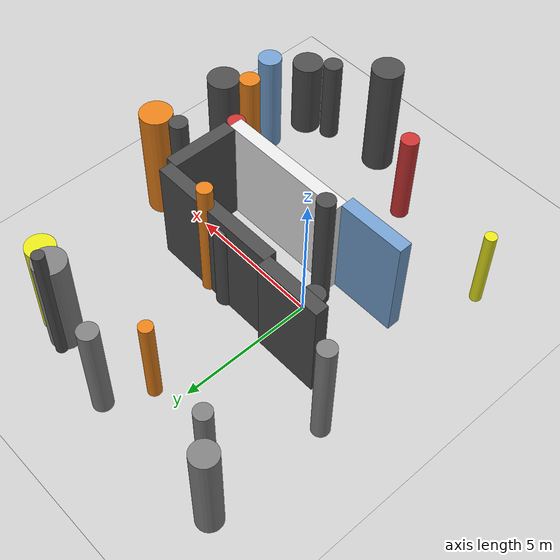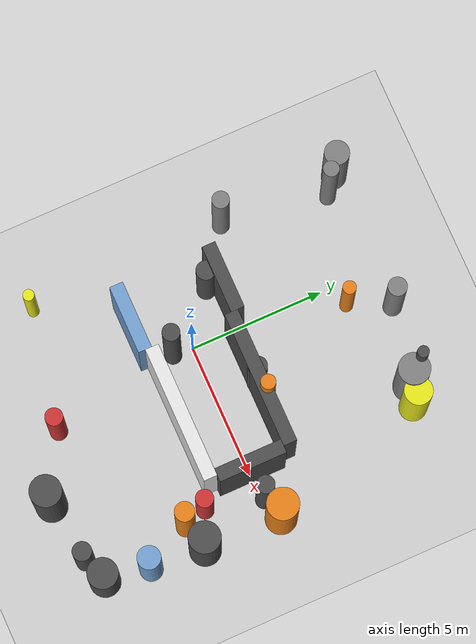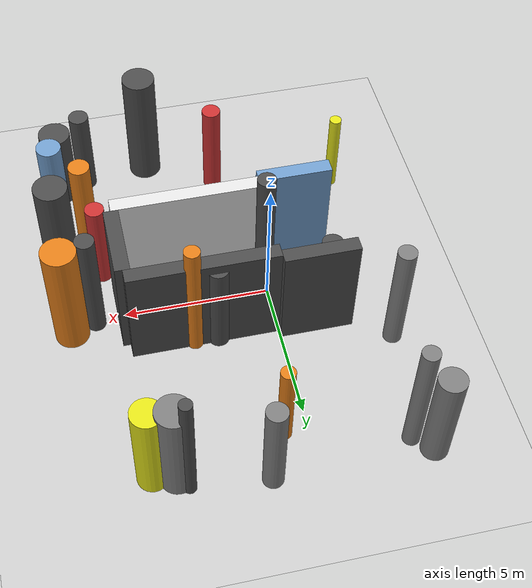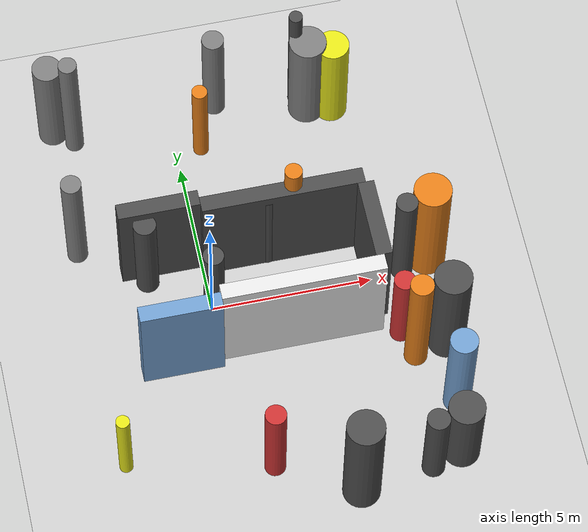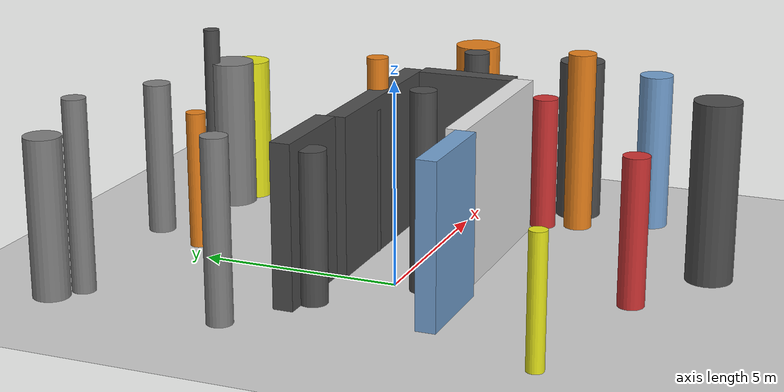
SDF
<?xml version='1.0'?>
<sdf version='1.6'>
  <world name='routeA_rl_v1__dense_recovery__rl_val__cul_de_sac_trap__000038'>
    <!-- Sun light -->
    <light name='sun' type='directional'>
      <cast_shadows>1</cast_shadows>
      <pose>0 0 10 0 0 0</pose>
      <diffuse>0.8 0.8 0.8 1</diffuse>
      <specular>0.2 0.2 0.2 1</specular>
      <attenuation>
        <range>1000</range>
        <constant>0.9</constant>
        <linear>0.01</linear>
        <quadratic>0.001</quadratic>
      </attenuation>
      <direction>-0.5 0.1 -0.9</direction>
    </light>

    <!-- Ground plane -->
    <model name='ground_plane'>
      <static>1</static>
      <link name='link'>
        <collision name='collision'>
          <geometry>
            <plane>
              <normal>0 0 1</normal>
              <size>100 100</size>
            </plane>
          </geometry>
          <surface>
            <contact>
              <collide_bitmask>65535</collide_bitmask>
              <ode/>
            </contact>
            <friction>
              <ode>
                <mu>100</mu>
                <mu2>50</mu2>
              </ode>
              <torsional><ode/></torsional>
            </friction>
            <bounce/>
          </surface>
          <max_contacts>10</max_contacts>
        </collision>
        <visual name='visual'>
          <cast_shadows>0</cast_shadows>
          <geometry>
            <plane>
              <normal>0 0 1</normal>
              <size>100 100</size>
            </plane>
          </geometry>
          <material>
            <script>
              <uri>file://media/materials/scripts/gazebo.material</uri>
              <n>Gazebo/Grey</n>
            </script>
          </material>
        </visual>
      </link>
    </model>

    <!-- Environment -->
    <magnetic_field>6e-06 2.3e-05 -4.2e-05</magnetic_field>
    <atmosphere type='adiabatic'/>
    <physics name='default_physics' default='0' type='ode'>
      <gravity>0 0 -9.8</gravity>
      <max_step_size>0.004</max_step_size>
      <real_time_factor>1</real_time_factor>
      <real_time_update_rate>250</real_time_update_rate>
    </physics>
    <scene>
      <ambient>0.4 0.4 0.4 1</ambient>
      <background>0.7 0.7 0.7 1</background>
      <shadows>1</shadows>
    </scene>
    <wind/>
    <spherical_coordinates>
      <surface_model>EARTH_WGS84</surface_model>
      <latitude_deg>0</latitude_deg>
      <longitude_deg>0</longitude_deg>
      <elevation>0</elevation>
      <heading_deg>0</heading_deg>
    </spherical_coordinates>

    <!-- ============ OBSTACLES (28) ============ -->
    <model name='trap_side_l'>
      <static>1</static>
      <link name='link'>
        <visual name='visual'>
          <geometry>
            <box>
              <size>5.0000 0.5000 4.0000</size>
            </box>
          </geometry>
          <material>
            <script>
              <n>Gazebo/White</n>
              <uri>file://media/materials/scripts/gazebo.material</uri>
            </script>
            <ambient>0.9 0.9 0.9 1</ambient>
          </material>
        </visual>
        <collision name='collision'>
          <geometry>
            <box>
              <size>5.0000 0.5000 4.0000</size>
            </box>
          </geometry>
          <max_contacts>10</max_contacts>
          <surface>
            <contact><ode/></contact>
            <bounce/>
            <friction>
              <ode><mu>1</mu><mu2>1</mu2></ode>
              <torsional><ode/></torsional>
            </friction>
          </surface>
        </collision>
      </link>
      <pose>2.5000 -1.5000 2.0000 0 0 0.0000</pose>
    </model>

    <model name='trap_side_r'>
      <static>1</static>
      <link name='link'>
        <visual name='visual'>
          <geometry>
            <box>
              <size>5.0000 0.5000 4.0000</size>
            </box>
          </geometry>
          <material>
            <script>
              <n>Gazebo/DarkGrey</n>
              <uri>file://media/materials/scripts/gazebo.material</uri>
            </script>
            <ambient>0.3 0.3 0.3 1</ambient>
          </material>
        </visual>
        <collision name='collision'>
          <geometry>
            <box>
              <size>5.0000 0.5000 4.0000</size>
            </box>
          </geometry>
          <max_contacts>10</max_contacts>
          <surface>
            <contact><ode/></contact>
            <bounce/>
            <friction>
              <ode><mu>1</mu><mu2>1</mu2></ode>
              <torsional><ode/></torsional>
            </friction>
          </surface>
        </collision>
      </link>
      <pose>2.5000 1.5000 2.0000 0 0 0.0000</pose>
    </model>

    <model name='trap_back'>
      <static>1</static>
      <link name='link'>
        <visual name='visual'>
          <geometry>
            <box>
              <size>0.5000 2.5000 4.0000</size>
            </box>
          </geometry>
          <material>
            <script>
              <n>Gazebo/DarkGrey</n>
              <uri>file://media/materials/scripts/gazebo.material</uri>
            </script>
            <ambient>0.3 0.3 0.3 1</ambient>
          </material>
        </visual>
        <collision name='collision'>
          <geometry>
            <box>
              <size>0.5000 2.5000 4.0000</size>
            </box>
          </geometry>
          <max_contacts>10</max_contacts>
          <surface>
            <contact><ode/></contact>
            <bounce/>
            <friction>
              <ode><mu>1</mu><mu2>1</mu2></ode>
              <torsional><ode/></torsional>
            </friction>
          </surface>
        </collision>
      </link>
      <pose>5.0000 0.0000 2.0000 0 0 0.0000</pose>
    </model>

    <model name='trap_funnel_l'>
      <static>1</static>
      <link name='link'>
        <visual name='visual'>
          <geometry>
            <box>
              <size>2.5000 0.5000 4.0000</size>
            </box>
          </geometry>
          <material>
            <script>
              <n>Gazebo/Blue</n>
              <uri>file://media/materials/scripts/gazebo.material</uri>
            </script>
            <ambient>0.447 0.624 0.812 1</ambient>
          </material>
        </visual>
        <collision name='collision'>
          <geometry>
            <box>
              <size>2.5000 0.5000 4.0000</size>
            </box>
          </geometry>
          <max_contacts>10</max_contacts>
          <surface>
            <contact><ode/></contact>
            <bounce/>
            <friction>
              <ode><mu>1</mu><mu2>1</mu2></ode>
              <torsional><ode/></torsional>
            </friction>
          </surface>
        </collision>
      </link>
      <pose>-1.2500 -1.7500 2.0000 0 0 0.0000</pose>
    </model>

    <model name='trap_funnel_r'>
      <static>1</static>
      <link name='link'>
        <visual name='visual'>
          <geometry>
            <box>
              <size>2.5000 0.5000 4.0000</size>
            </box>
          </geometry>
          <material>
            <script>
              <n>Gazebo/DarkGrey</n>
              <uri>file://media/materials/scripts/gazebo.material</uri>
            </script>
            <ambient>0.3 0.3 0.3 1</ambient>
          </material>
        </visual>
        <collision name='collision'>
          <geometry>
            <box>
              <size>2.5000 0.5000 4.0000</size>
            </box>
          </geometry>
          <max_contacts>10</max_contacts>
          <surface>
            <contact><ode/></contact>
            <bounce/>
            <friction>
              <ode><mu>1</mu><mu2>1</mu2></ode>
              <torsional><ode/></torsional>
            </friction>
          </surface>
        </collision>
      </link>
      <pose>-1.2500 1.7500 2.0000 0 0 0.0000</pose>
    </model>

    <model name='trap_scatter_0'>
      <static>1</static>
      <link name='link'>
        <visual name='visual'>
          <geometry>
            <cylinder>
              <radius>0.5761</radius>
              <length>4.4370</length>
            </cylinder>
          </geometry>
          <material>
            <script>
              <n>Gazebo/DarkGrey</n>
              <uri>file://media/materials/scripts/gazebo.material</uri>
            </script>
            <ambient>0.3 0.3 0.3 1</ambient>
          </material>
        </visual>
        <collision name='collision'>
          <geometry>
            <cylinder>
              <radius>0.5761</radius>
              <length>4.4370</length>
            </cylinder>
          </geometry>
          <max_contacts>10</max_contacts>
          <surface>
            <contact><ode/></contact>
            <bounce/>
            <friction>
              <ode><mu>1</mu><mu2>1</mu2></ode>
              <torsional><ode/></torsional>
            </friction>
          </surface>
        </collision>
      </link>
      <pose>3.1615 -6.8495 2.2185 0 0 0.0000</pose>
    </model>

    <model name='trap_scatter_1'>
      <static>1</static>
      <link name='link'>
        <visual name='visual'>
          <geometry>
            <cylinder>
              <radius>0.3586</radius>
              <length>4.6310</length>
            </cylinder>
          </geometry>
          <material>
            <script>
              <n>Gazebo/Orange</n>
              <uri>file://media/materials/scripts/gazebo.material</uri>
            </script>
            <ambient>0.9 0.5 0.1 1</ambient>
          </material>
        </visual>
        <collision name='collision'>
          <geometry>
            <cylinder>
              <radius>0.3586</radius>
              <length>4.6310</length>
            </cylinder>
          </geometry>
          <max_contacts>10</max_contacts>
          <surface>
            <contact><ode/></contact>
            <bounce/>
            <friction>
              <ode><mu>1</mu><mu2>1</mu2></ode>
              <torsional><ode/></torsional>
            </friction>
          </surface>
        </collision>
      </link>
      <pose>5.7633 -2.8080 2.3155 0 0 0.0000</pose>
    </model>

    <model name='trap_scatter_2'>
      <static>1</static>
      <link name='link'>
        <visual name='visual'>
          <geometry>
            <cylinder>
              <radius>0.3279</radius>
              <length>4.3397</length>
            </cylinder>
          </geometry>
          <material>
            <script>
              <n>Gazebo/DarkGrey</n>
              <uri>file://media/materials/scripts/gazebo.material</uri>
            </script>
            <ambient>0.3 0.3 0.3 1</ambient>
          </material>
        </visual>
        <collision name='collision'>
          <geometry>
            <cylinder>
              <radius>0.3279</radius>
              <length>4.3397</length>
            </cylinder>
          </geometry>
          <max_contacts>10</max_contacts>
          <surface>
            <contact><ode/></contact>
            <bounce/>
            <friction>
              <ode><mu>1</mu><mu2>1</mu2></ode>
              <torsional><ode/></torsional>
            </friction>
          </surface>
        </collision>
      </link>
      <pose>6.0041 0.1207 2.1698 0 0 0.0000</pose>
    </model>

    <model name='trap_scatter_3'>
      <static>1</static>
      <link name='link'>
        <visual name='visual'>
          <geometry>
            <cylinder>
              <radius>0.2083</radius>
              <length>3.1571</length>
            </cylinder>
          </geometry>
          <material>
            <script>
              <n>Gazebo/Yellow</n>
              <uri>file://media/materials/scripts/gazebo.material</uri>
            </script>
            <ambient>0.9 0.9 0.1 1</ambient>
          </material>
        </visual>
        <collision name='collision'>
          <geometry>
            <cylinder>
              <radius>0.2083</radius>
              <length>3.1571</length>
            </cylinder>
          </geometry>
          <max_contacts>10</max_contacts>
          <surface>
            <contact><ode/></contact>
            <bounce/>
            <friction>
              <ode><mu>1</mu><mu2>1</mu2></ode>
              <torsional><ode/></torsional>
            </friction>
          </surface>
        </collision>
      </link>
      <pose>-3.5589 -4.6470 1.5785 0 0 0.0000</pose>
    </model>

    <model name='trap_scatter_5'>
      <static>1</static>
      <link name='link'>
        <visual name='visual'>
          <geometry>
            <cylinder>
              <radius>0.3259</radius>
              <length>3.4390</length>
            </cylinder>
          </geometry>
          <material>
            <script>
              <n>Gazebo/Red</n>
              <uri>file://media/materials/scripts/gazebo.material</uri>
            </script>
            <ambient>0.8 0.2 0.2 1</ambient>
          </material>
        </visual>
        <collision name='collision'>
          <geometry>
            <cylinder>
              <radius>0.3259</radius>
              <length>3.4390</length>
            </cylinder>
          </geometry>
          <max_contacts>10</max_contacts>
          <surface>
            <contact><ode/></contact>
            <bounce/>
            <friction>
              <ode><mu>1</mu><mu2>1</mu2></ode>
              <torsional><ode/></torsional>
            </friction>
          </surface>
        </collision>
      </link>
      <pose>5.4886 -1.9475 1.7195 0 0 0.0000</pose>
    </model>

    <model name='trap_scatter_6'>
      <static>1</static>
      <link name='link'>
        <visual name='visual'>
          <geometry>
            <cylinder>
              <radius>0.3236</radius>
              <length>3.6180</length>
            </cylinder>
          </geometry>
          <material>
            <script>
              <n>Gazebo/Red</n>
              <uri>file://media/materials/scripts/gazebo.material</uri>
            </script>
            <ambient>0.8 0.2 0.2 1</ambient>
          </material>
        </visual>
        <collision name='collision'>
          <geometry>
            <cylinder>
              <radius>0.3236</radius>
              <length>3.6180</length>
            </cylinder>
          </geometry>
          <max_contacts>10</max_contacts>
          <surface>
            <contact><ode/></contact>
            <bounce/>
            <friction>
              <ode><mu>1</mu><mu2>1</mu2></ode>
              <torsional><ode/></torsional>
            </friction>
          </surface>
        </collision>
      </link>
      <pose>0.8043 -5.5558 1.8090 0 0 0.0000</pose>
    </model>

    <model name='trap_scatter_7'>
      <static>1</static>
      <link name='link'>
        <visual name='visual'>
          <geometry>
            <cylinder>
              <radius>0.5770</radius>
              <length>3.8896</length>
            </cylinder>
          </geometry>
          <material>
            <script>
              <n>Gazebo/Grey</n>
              <uri>file://media/materials/scripts/gazebo.material</uri>
            </script>
            <ambient>0.5 0.5 0.5 1</ambient>
          </material>
        </visual>
        <collision name='collision'>
          <geometry>
            <cylinder>
              <radius>0.5770</radius>
              <length>3.8896</length>
            </cylinder>
          </geometry>
          <max_contacts>10</max_contacts>
          <surface>
            <contact><ode/></contact>
            <bounce/>
            <friction>
              <ode><mu>1</mu><mu2>1</mu2></ode>
              <torsional><ode/></torsional>
            </friction>
          </surface>
        </collision>
      </link>
      <pose>4.3668 6.4803 1.9448 0 0 0.0000</pose>
    </model>

    <model name='trap_scatter_8'>
      <static>1</static>
      <link name='link'>
        <visual name='visual'>
          <geometry>
            <cylinder>
              <radius>0.3170</radius>
              <length>4.8745</length>
            </cylinder>
          </geometry>
          <material>
            <script>
              <n>Gazebo/DarkGrey</n>
              <uri>file://media/materials/scripts/gazebo.material</uri>
            </script>
            <ambient>0.3 0.3 0.3 1</ambient>
          </material>
        </visual>
        <collision name='collision'>
          <geometry>
            <cylinder>
              <radius>0.3170</radius>
              <length>4.8745</length>
            </cylinder>
          </geometry>
          <max_contacts>10</max_contacts>
          <surface>
            <contact><ode/></contact>
            <bounce/>
            <friction>
              <ode><mu>1</mu><mu2>1</mu2></ode>
              <torsional><ode/></torsional>
            </friction>
          </surface>
        </collision>
      </link>
      <pose>-0.0509 -0.7365 2.4372 0 0 0.0000</pose>
    </model>

    <model name='trap_scatter_9'>
      <static>1</static>
      <link name='link'>
        <visual name='visual'>
          <geometry>
            <cylinder>
              <radius>0.3494</radius>
              <length>3.3424</length>
            </cylinder>
          </geometry>
          <material>
            <script>
              <n>Gazebo/DarkGrey</n>
              <uri>file://media/materials/scripts/gazebo.material</uri>
            </script>
            <ambient>0.3 0.3 0.3 1</ambient>
          </material>
        </visual>
        <collision name='collision'>
          <geometry>
            <cylinder>
              <radius>0.3494</radius>
              <length>3.3424</length>
            </cylinder>
          </geometry>
          <max_contacts>10</max_contacts>
          <surface>
            <contact><ode/></contact>
            <bounce/>
            <friction>
              <ode><mu>1</mu><mu2>1</mu2></ode>
              <torsional><ode/></torsional>
            </friction>
          </surface>
        </collision>
      </link>
      <pose>5.4373 -6.5358 1.6712 0 0 0.0000</pose>
    </model>

    <model name='trap_scatter_10'>
      <static>1</static>
      <link name='link'>
        <visual name='visual'>
          <geometry>
            <cylinder>
              <radius>0.2699</radius>
              <length>4.7811</length>
            </cylinder>
          </geometry>
          <material>
            <script>
              <n>Gazebo/Orange</n>
              <uri>file://media/materials/scripts/gazebo.material</uri>
            </script>
            <ambient>0.9 0.5 0.1 1</ambient>
          </material>
        </visual>
        <collision name='collision'>
          <geometry>
            <cylinder>
              <radius>0.2699</radius>
              <length>4.7811</length>
            </cylinder>
          </geometry>
          <max_contacts>10</max_contacts>
          <surface>
            <contact><ode/></contact>
            <bounce/>
            <friction>
              <ode><mu>1</mu><mu2>1</mu2></ode>
              <torsional><ode/></torsional>
            </friction>
          </surface>
        </collision>
      </link>
      <pose>2.8598 1.6185 2.3906 0 0 0.0000</pose>
    </model>

    <model name='trap_scatter_11'>
      <static>1</static>
      <link name='link'>
        <visual name='visual'>
          <geometry>
            <cylinder>
              <radius>0.2876</radius>
              <length>4.7020</length>
            </cylinder>
          </geometry>
          <material>
            <script>
              <n>Gazebo/Grey</n>
              <uri>file://media/materials/scripts/gazebo.material</uri>
            </script>
            <ambient>0.5 0.5 0.5 1</ambient>
          </material>
        </visual>
        <collision name='collision'>
          <geometry>
            <cylinder>
              <radius>0.2876</radius>
              <length>4.7020</length>
            </cylinder>
          </geometry>
          <max_contacts>10</max_contacts>
          <surface>
            <contact><ode/></contact>
            <bounce/>
            <friction>
              <ode><mu>1</mu><mu2>1</mu2></ode>
              <torsional><ode/></torsional>
            </friction>
          </surface>
        </collision>
      </link>
      <pose>-3.0743 6.6639 2.3510 0 0 0.0000</pose>
    </model>

    <model name='trap_scatter_13'>
      <static>1</static>
      <link name='link'>
        <visual name='visual'>
          <geometry>
            <cylinder>
              <radius>0.4242</radius>
              <length>4.0222</length>
            </cylinder>
          </geometry>
          <material>
            <script>
              <n>Gazebo/Blue</n>
              <uri>file://media/materials/scripts/gazebo.material</uri>
            </script>
            <ambient>0.447 0.624 0.812 1</ambient>
          </material>
        </visual>
        <collision name='collision'>
          <geometry>
            <cylinder>
              <radius>0.4242</radius>
              <length>4.0222</length>
            </cylinder>
          </geometry>
          <max_contacts>10</max_contacts>
          <surface>
            <contact><ode/></contact>
            <bounce/>
            <friction>
              <ode><mu>1</mu><mu2>1</mu2></ode>
              <torsional><ode/></torsional>
            </friction>
          </surface>
        </collision>
      </link>
      <pose>6.6419 -4.5364 2.0111 0 0 0.0000</pose>
    </model>

    <model name='trap_scatter_14'>
      <static>1</static>
      <link name='link'>
        <visual name='visual'>
          <geometry>
            <cylinder>
              <radius>0.2114</radius>
              <length>4.7838</length>
            </cylinder>
          </geometry>
          <material>
            <script>
              <n>Gazebo/DarkGrey</n>
              <uri>file://media/materials/scripts/gazebo.material</uri>
            </script>
            <ambient>0.3 0.3 0.3 1</ambient>
          </material>
        </visual>
        <collision name='collision'>
          <geometry>
            <cylinder>
              <radius>0.2114</radius>
              <length>4.7838</length>
            </cylinder>
          </geometry>
          <max_contacts>10</max_contacts>
          <surface>
            <contact><ode/></contact>
            <bounce/>
            <friction>
              <ode><mu>1</mu><mu2>1</mu2></ode>
              <torsional><ode/></torsional>
            </friction>
          </surface>
        </collision>
      </link>
      <pose>4.0670 6.9004 2.3919 0 0 0.0000</pose>
    </model>

    <model name='trap_scatter_15'>
      <static>1</static>
      <link name='link'>
        <visual name='visual'>
          <geometry>
            <cylinder>
              <radius>0.2442</radius>
              <length>3.4758</length>
            </cylinder>
          </geometry>
          <material>
            <script>
              <n>Gazebo/Orange</n>
              <uri>file://media/materials/scripts/gazebo.material</uri>
            </script>
            <ambient>0.9 0.5 0.1 1</ambient>
          </material>
        </visual>
        <collision name='collision'>
          <geometry>
            <cylinder>
              <radius>0.2442</radius>
              <length>3.4758</length>
            </cylinder>
          </geometry>
          <max_contacts>10</max_contacts>
          <surface>
            <contact><ode/></contact>
            <bounce/>
            <friction>
              <ode><mu>1</mu><mu2>1</mu2></ode>
              <torsional><ode/></torsional>
            </friction>
          </surface>
        </collision>
      </link>
      <pose>0.7953 5.6553 1.7379 0 0 0.0000</pose>
    </model>

    <model name='trap_scatter_16'>
      <static>1</static>
      <link name='link'>
        <visual name='visual'>
          <geometry>
            <cylinder>
              <radius>0.3525</radius>
              <length>3.7129</length>
            </cylinder>
          </geometry>
          <material>
            <script>
              <n>Gazebo/DarkGrey</n>
              <uri>file://media/materials/scripts/gazebo.material</uri>
            </script>
            <ambient>0.3 0.3 0.3 1</ambient>
          </material>
        </visual>
        <collision name='collision'>
          <geometry>
            <cylinder>
              <radius>0.3525</radius>
              <length>3.7129</length>
            </cylinder>
          </geometry>
          <max_contacts>10</max_contacts>
          <surface>
            <contact><ode/></contact>
            <bounce/>
            <friction>
              <ode><mu>1</mu><mu2>1</mu2></ode>
              <torsional><ode/></torsional>
            </friction>
          </surface>
        </collision>
      </link>
      <pose>-1.7491 1.3157 1.8564 0 0 0.0000</pose>
    </model>

    <model name='trap_scatter_17'>
      <static>1</static>
      <link name='link'>
        <visual name='visual'>
          <geometry>
            <cylinder>
              <radius>0.5810</radius>
              <length>4.3364</length>
            </cylinder>
          </geometry>
          <material>
            <script>
              <n>Gazebo/Orange</n>
              <uri>file://media/materials/scripts/gazebo.material</uri>
            </script>
            <ambient>0.9 0.5 0.1 1</ambient>
          </material>
        </visual>
        <collision name='collision'>
          <geometry>
            <cylinder>
              <radius>0.5810</radius>
              <length>4.3364</length>
            </cylinder>
          </geometry>
          <max_contacts>10</max_contacts>
          <surface>
            <contact><ode/></contact>
            <bounce/>
            <friction>
              <ode><mu>1</mu><mu2>1</mu2></ode>
              <torsional><ode/></torsional>
            </friction>
          </surface>
        </collision>
      </link>
      <pose>6.8525 0.3865 2.1682 0 0 0.0000</pose>
    </model>

    <model name='trap_scatter_18'>
      <static>1</static>
      <link name='link'>
        <visual name='visual'>
          <geometry>
            <cylinder>
              <radius>0.5571</radius>
              <length>3.0229</length>
            </cylinder>
          </geometry>
          <material>
            <script>
              <n>Gazebo/DarkGrey</n>
              <uri>file://media/materials/scripts/gazebo.material</uri>
            </script>
            <ambient>0.3 0.3 0.3 1</ambient>
          </material>
        </visual>
        <collision name='collision'>
          <geometry>
            <cylinder>
              <radius>0.5571</radius>
              <length>3.0229</length>
            </cylinder>
          </geometry>
          <max_contacts>10</max_contacts>
          <surface>
            <contact><ode/></contact>
            <bounce/>
            <friction>
              <ode><mu>1</mu><mu2>1</mu2></ode>
              <torsional><ode/></torsional>
            </friction>
          </surface>
        </collision>
      </link>
      <pose>6.3836 -6.1929 1.5115 0 0 0.0000</pose>
    </model>

    <model name='trap_scatter_19'>
      <static>1</static>
      <link name='link'>
        <visual name='visual'>
          <geometry>
            <cylinder>
              <radius>0.4520</radius>
              <length>3.9020</length>
            </cylinder>
          </geometry>
          <material>
            <script>
              <n>Gazebo/Grey</n>
              <uri>file://media/materials/scripts/gazebo.material</uri>
            </script>
            <ambient>0.5 0.5 0.5 1</ambient>
          </material>
        </visual>
        <collision name='collision'>
          <geometry>
            <cylinder>
              <radius>0.4520</radius>
              <length>3.9020</length>
            </cylinder>
          </geometry>
          <max_contacts>10</max_contacts>
          <surface>
            <contact><ode/></contact>
            <bounce/>
            <friction>
              <ode><mu>1</mu><mu2>1</mu2></ode>
              <torsional><ode/></torsional>
            </friction>
          </surface>
        </collision>
      </link>
      <pose>-3.6704 7.1767 1.9510 0 0 0.0000</pose>
    </model>

    <model name='trap_scatter_20'>
      <static>1</static>
      <link name='link'>
        <visual name='visual'>
          <geometry>
            <cylinder>
              <radius>0.5795</radius>
              <length>4.1763</length>
            </cylinder>
          </geometry>
          <material>
            <script>
              <n>Gazebo/DarkGrey</n>
              <uri>file://media/materials/scripts/gazebo.material</uri>
            </script>
            <ambient>0.3 0.3 0.3 1</ambient>
          </material>
        </visual>
        <collision name='collision'>
          <geometry>
            <cylinder>
              <radius>0.5795</radius>
              <length>4.1763</length>
            </cylinder>
          </geometry>
          <max_contacts>10</max_contacts>
          <surface>
            <contact><ode/></contact>
            <bounce/>
            <friction>
              <ode><mu>1</mu><mu2>1</mu2></ode>
              <torsional><ode/></torsional>
            </friction>
          </surface>
        </collision>
      </link>
      <pose>6.7937 -2.5186 2.0881 0 0 0.0000</pose>
    </model>

    <model name='trap_scatter_21'>
      <static>1</static>
      <link name='link'>
        <visual name='visual'>
          <geometry>
            <cylinder>
              <radius>0.3462</radius>
              <length>3.9020</length>
            </cylinder>
          </geometry>
          <material>
            <script>
              <n>Gazebo/Grey</n>
              <uri>file://media/materials/scripts/gazebo.material</uri>
            </script>
            <ambient>0.5 0.5 0.5 1</ambient>
          </material>
        </visual>
        <collision name='collision'>
          <geometry>
            <cylinder>
              <radius>0.3462</radius>
              <length>3.9020</length>
            </cylinder>
          </geometry>
          <max_contacts>10</max_contacts>
          <surface>
            <contact><ode/></contact>
            <bounce/>
            <friction>
              <ode><mu>1</mu><mu2>1</mu2></ode>
              <torsional><ode/></torsional>
            </friction>
          </surface>
        </collision>
      </link>
      <pose>1.5121 7.1416 1.9510 0 0 0.0000</pose>
    </model>

    <model name='trap_scatter_22'>
      <static>1</static>
      <link name='link'>
        <visual name='visual'>
          <geometry>
            <cylinder>
              <radius>0.5098</radius>
              <length>3.7638</length>
            </cylinder>
          </geometry>
          <material>
            <script>
              <n>Gazebo/Yellow</n>
              <uri>file://media/materials/scripts/gazebo.material</uri>
            </script>
            <ambient>0.9 0.9 0.1 1</ambient>
          </material>
        </visual>
        <collision name='collision'>
          <geometry>
            <cylinder>
              <radius>0.5098</radius>
              <length>3.7638</length>
            </cylinder>
          </geometry>
          <max_contacts>10</max_contacts>
          <surface>
            <contact><ode/></contact>
            <bounce/>
            <friction>
              <ode><mu>1</mu><mu2>1</mu2></ode>
              <torsional><ode/></torsional>
            </friction>
          </surface>
        </collision>
      </link>
      <pose>5.1157 6.3059 1.8819 0 0 0.0000</pose>
    </model>

    <model name='trap_scatter_23'>
      <static>1</static>
      <link name='link'>
        <visual name='visual'>
          <geometry>
            <cylinder>
              <radius>0.3552</radius>
              <length>3.6629</length>
            </cylinder>
          </geometry>
          <material>
            <script>
              <n>Gazebo/DarkGrey</n>
              <uri>file://media/materials/scripts/gazebo.material</uri>
            </script>
            <ambient>0.3 0.3 0.3 1</ambient>
          </material>
        </visual>
        <collision name='collision'>
          <geometry>
            <cylinder>
              <radius>0.3552</radius>
              <length>3.6629</length>
            </cylinder>
          </geometry>
          <max_contacts>10</max_contacts>
          <surface>
            <contact><ode/></contact>
            <bounce/>
            <friction>
              <ode><mu>1</mu><mu2>1</mu2></ode>
              <torsional><ode/></torsional>
            </friction>
          </surface>
        </collision>
      </link>
      <pose>2.0445 1.5884 1.8315 0 0 0.0000</pose>
    </model>

    <model name='trap_scatter_24'>
      <static>1</static>
      <link name='link'>
        <visual name='visual'>
          <geometry>
            <cylinder>
              <radius>0.3161</radius>
              <length>4.3963</length>
            </cylinder>
          </geometry>
          <material>
            <script>
              <n>Gazebo/Grey</n>
              <uri>file://media/materials/scripts/gazebo.material</uri>
            </script>
            <ambient>0.5 0.5 0.5 1</ambient>
          </material>
        </visual>
        <collision name='collision'>
          <geometry>
            <cylinder>
              <radius>0.3161</radius>
              <length>4.3963</length>
            </cylinder>
          </geometry>
          <max_contacts>10</max_contacts>
          <surface>
            <contact><ode/></contact>
            <bounce/>
            <friction>
              <ode><mu>1</mu><mu2>1</mu2></ode>
              <torsional><ode/></torsional>
            </friction>
          </surface>
        </collision>
      </link>
      <pose>-3.6908 2.7449 2.1981 0 0 0.0000</pose>
    </model>

    <!-- GUI camera -->
    <gui fullscreen='0'>
      <camera name='user_camera'>
        <pose>-15 0 18 0 0.85 0.15</pose>
        <view_controller>orbit</view_controller>
        <projection_type>perspective</projection_type>
      </camera>
    </gui>
  </world>
</sdf>
